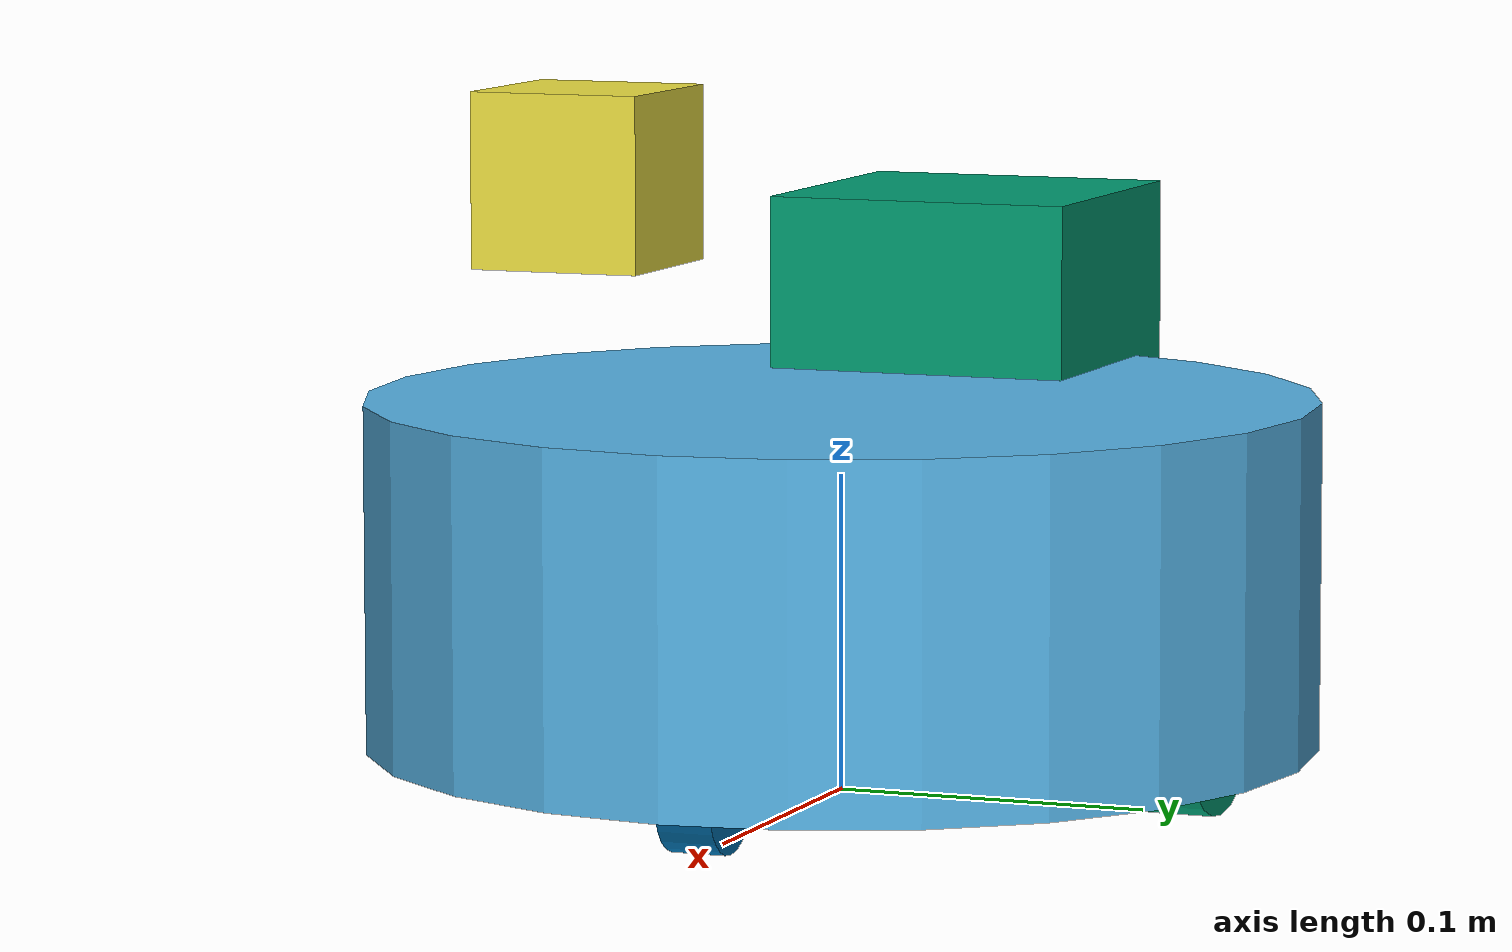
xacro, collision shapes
<?xml version="1.0"?>

<!-- jplaced
 2022, Universidad de Zaragoza -->

<!-- Robot standalone -->

<robot  name="kobuki_standalone"
        xmlns:sensor="http://playerstage.sourceforge.net/gazebo/xmlschema/#sensor"
        xmlns:controller="http://playerstage.sourceforge.net/gazebo/xmlschema/#controller"
        xmlns:interface="http://playerstage.sourceforge.net/gazebo/xmlschema/#interface"
        xmlns:xacro="http://ros.org/wiki/xacro">

  <!-- Defines the kobuki component tag. -->
  <xacro:include filename="$(find robot_description)/launch/include/urdf/kobuki_camera.urdf.xacro" />
  <xacro:kobuki/>
</robot>

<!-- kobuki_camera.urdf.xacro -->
<!-- jplaced
 2022, Universidad de Zaragoza -->

<!-- URDF of robot with camera & laser  -->

<robot name="kobuki" xmlns:xacro="http://ros.org/wiki/xacro">
  <xacro:include filename="$(find robot_description)/launch/include/urdf/common_properties.urdf.xacro"/>
  <xacro:include filename="$(find robot_description)/launch/include/urdf/kobuki_camera_gazebo.urdf.xacro"/>

  <!-- Kobuki -->
  <xacro:macro name="kobuki">
    <link name="base_footprint"/>
    <inertial>
      <mass value="1" />
      <inertia ixx="1.0" ixy="0.0" ixz="0.0" iyy="1.0" iyz="0.0" izz="1.0" />
    </inertial>
    <joint name="base_joint" type="fixed">
      <origin xyz="0 0 0.0102" rpy="0 0 0" />
      <parent link="base_footprint"/>
      <child link="base_link" />
    </joint>
    <link name="base_link">
      <visual>
        <geometry>
          <mesh filename="package://robot_description/launch/include/meshes/main_body.dae" />
        </geometry>
        <origin xyz="0.001 0 0.05199" rpy="0 0 0"/>
      </visual>
      <collision>
        <geometry>
          <cylinder length="0.10938" radius="0.15"/>
        </geometry>
        <origin xyz="0.0 0 0.05949" rpy="0 0 0"/>
      </collision>
      <inertial>
        <origin xyz="0.01 0 0"/>
        <mass value="2.4"/> <!-- 2.4/2.6 kg for small/big battery pack -->
        <inertia ixx="0.019995" ixy="0.0" ixz="0.0"
                 iyy="0.019995" iyz="0.0"
                 izz="0.03675" />
      </inertial>
    </link>

    <joint name="wheel_left_joint" type="continuous">
      <parent link="base_link"/>
      <child link="wheel_left_link"/>
      <origin xyz="0.00 ${0.23/2} 0.0250" rpy="${-M_PI/2} 0 0"/>
      <axis xyz="0 0 1"/>
    </joint>
    <link name="wheel_left_link">
      <visual>
        <geometry>
          <mesh filename="package://robot_description/launch/include/meshes/wheel.dae"/>
        </geometry>
        <origin xyz="0 0 0" rpy="0 0 0"/>
      </visual>
      <collision>
        <geometry>
          <cylinder length="0.0206" radius="0.0352"/>
        </geometry>
        <origin rpy="0 0 0" xyz="0 0 0"/>
      </collision>
      <inertial>
        <mass value="0.01" />
        <origin xyz="0 0 0" />
        <inertia ixx="0.001" ixy="0.0" ixz="0.0"
                 iyy="0.001" iyz="0.0"
                 izz="0.001" />
      </inertial>
    </link>

    <joint name="wheel_right_joint" type="continuous">
      <parent link="base_link"/>
      <child link="wheel_right_link"/>
      <origin xyz="0.00 -${0.23/2} 0.0250" rpy="${-M_PI/2} 0 0"/>
      <axis xyz="0 0 1"/>
    </joint>
    <link name="wheel_right_link">
      <visual>
        <geometry>
          <mesh filename="package://robot_description/launch/include/meshes/wheel.dae"/>
        </geometry>
        <origin xyz="0 0 0" rpy="0 0 0"/>
      </visual>
      <collision>
        <geometry>
          <cylinder length="0.0206" radius="0.0350"/>
        </geometry>
        <origin rpy="0 0 0" xyz="0 0 0"/>
      </collision>
      <inertial>
        <mass value="0.01" />
        <origin xyz="0 0 0" />
        <inertia ixx="0.001" ixy="0.0" ixz="0.0"
                 iyy="0.001" iyz="0.0"
                 izz="0.001" />
      </inertial>
    </link>

    <joint name="caster_front_joint" type="fixed">
      <parent link="base_link"/>
      <child link="caster_front_link"/>
      <origin xyz="0.115 0.0 0.007" rpy="${-M_PI/2} 0 0"/>
    </joint>
    <link name="caster_front_link">
      <collision>
        <geometry>
          <cylinder length="0.0176" radius="0.017"/>
        </geometry>
        <origin rpy="0 0 0" xyz="0 0 0"/>
      </collision>
      <inertial>
        <mass value="0.01" />
        <origin xyz="0 0 0" />
        <inertia ixx="0.001" ixy="0.0" ixz="0.0"
                 iyy="0.001" iyz="0.0"
                 izz="0.001" />
      </inertial>
    </link>

    <joint name="caster_back_joint" type="fixed">
      <parent link="base_link"/>
      <child link="caster_back_link"/>
      <origin xyz="-0.135 0.0 0.009" rpy="${-M_PI/2} 0 0"/>
    </joint>
    <link name="caster_back_link">
      <collision>
        <geometry>
          <cylinder length="0.0176" radius="0.017"/>
        </geometry>
        <origin rpy="0 0 0" xyz="0 0 0"/>
      </collision>
      <inertial>
        <mass value="0.01" />
        <origin xyz="0 0 0" />
        <inertia ixx="0.001" ixy="0.0" ixz="0.0"
                 iyy="0.001" iyz="0.0"
                 izz="0.001" />
      </inertial>
    </link>

    <!-- Kobuki's sensors -->
    <joint name="gyro_joint" type="fixed">
      <axis xyz="0 1 0"/>
      <origin xyz="0.056 0.062 0.0202" rpy="0 0 0"/>
      <parent link="base_link"/>
      <child link="gyro_link"/>
    </joint>
    <link name="gyro_link">
      <inertial>
        <mass value="0.001"/>
        <origin xyz="0 0 0" rpy="0 0 0"/>
        <inertia ixx="0.0001" ixy="0" ixz="0"
                 iyy="0.000001" iyz="0"
                 izz="0.0001"/>
      </inertial>
    </link>

    <joint name="cliff_sensor_left_joint" type="fixed">
      <origin xyz="0.08734 0.13601 0.0214" rpy="0 ${M_PI/2} 0" />
      <parent link="base_link"/>
      <child link="cliff_sensor_left_link" />
    </joint>
    <link name="cliff_sensor_left_link">
      <inertial>
        <mass value="0.0001" />
        <origin xyz="0 0 0" />
        <inertia ixx="0.0001" ixy="0.0" ixz="0.0"
                 iyy="0.0001" iyz="0.0"
                 izz="0.0001" />
      </inertial>
    </link>

    <joint name="cliff_sensor_right_joint" type="fixed">
      <origin xyz="0.085 -0.13601 0.0214" rpy="0 ${M_PI/2} 0" />
      <parent link="base_link"/>
      <child link="cliff_sensor_right_link" />
    </joint>
    <link name="cliff_sensor_right_link">
      <inertial>
        <mass value="0.0001" />
        <origin xyz="0 0 0" />
        <inertia ixx="0.0001" ixy="0.0" ixz="0.0"
                 iyy="0.0001" iyz="0.0"
                 izz="0.0001" />
      </inertial>
    </link>

    <joint name="cliff_sensor_front_joint" type="fixed">
      <origin xyz="0.156 0.00 0.0214" rpy="0 ${M_PI/2} 0" />
      <parent link="base_link"/>
      <child link="cliff_sensor_front_link" />
    </joint>
    <link name="cliff_sensor_front_link">
      <inertial>
        <mass value="0.0001" />
        <origin xyz="0 0 0" />
        <inertia ixx="0.0001" ixy="0.0" ixz="0.0"
                 iyy="0.0001" iyz="0.0"
                 izz="0.0001" />
      </inertial>
    </link>

    <!-- hokuyo -->
    <joint name="laser_joint" type="fixed">
      <origin xyz="-.115 0 0.12" rpy="0 0 0" />
      <parent link="base_link" />
      <child link="base_laser_link" />
    </joint>
    <link name="base_laser_link">
      <collision>
        <origin xyz="0 0 0" rpy="0 0 0"/>
        <geometry>
      <box size="0.1 0.1 0.1"/>
        </geometry>
      </collision>
      <visual>
        <origin xyz="0 0 0" rpy="0 0 0"/>
        <geometry>
          <mesh filename="package://robot_description/launch/include/meshes/hokuyo.dae"/>
        </geometry>
      </visual>
      <inertial>
        <mass value="0.0001" />
        <origin xyz="0 0 1" rpy="0 0 0"/>
        <inertia ixx="0.0001" ixy="0.0" ixz="0.0"
                 iyy="0.0001" iyz="0.0"
                 izz="0.0001" />
     </inertial>
   </link>

   <!-- camera -->
   <joint name="camera_joint" type="fixed">
     <parent link="base_link" />
     <child link="camera_link" />
     <origin xyz="0.2 0 0.2" rpy="0 0 0" />
   </joint>
   <link name="camera_link">
     <collision>
       <origin xyz="0 0 0" rpy="0 0 0"/>
       <geometry>
         <box size="0.05 0.05 0.05"/>
       </geometry>
     </collision>
     <visual>
       <origin xyz="0 0 0" rpy="0 0 1.57"/>
       <geometry>
         <mesh filename="package://robot_description/launch/include/meshes/kinect.dae"/>
       </geometry>
     </visual>
     <inertial>
       <mass value="0.0001" />
       <origin xyz="0 0 1" rpy="0 0 0"/>
       <inertia ixx="0.0001" ixy="0.0" ixz="0.0"
                iyy="0.0001" iyz="0.0"
                izz="0.0001" />
    </inertial>
  </link>
  <joint name="camera_optical_joint" type="fixed">
     <!-- these values have to be these values otherwise the gazebo camera
         image won't be aligned properly with the frame it is supposedly
         originating from -->
     <origin xyz="0 0 0" rpy="${-pi/2} 0 ${-pi/2}"/>
     <parent link="camera_link"/>
     <child link="camera_link_optical"/>
   </joint>

   <link name="camera_link_optical">
   </link>

    <!-- Kobuki Gazebo simulation details -->
    <xacro:kobuki_sim_camera/>

  </xacro:macro>
</robot>

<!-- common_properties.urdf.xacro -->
<!--
  Various useful properties such as constants and materials
 -->
<robot name="xacro_properties" xmlns:xacro="http://ros.org/wiki/xacro">
  <xacro:property name="M_PI" value="3.1415926535897931" />
  <xacro:property name="material_white">
    <material name="white">
      <color rgba="1 1 1 1"/>
    </material>
  </xacro:property>
  <xacro:property name="material_grey">
    <material name="grey">
      <color rgba="0.5 0.5 0.5 1"/>
    </material>
  </xacro:property>
  <xacro:property name="material_light_grey">
    <material name="light_grey">
      <color rgba="0.6 0.6 0.6 1"/>
    </material>
  </xacro:property>
  <xacro:property name="material_dark_grey">
    <material name="dark_grey">
      <color rgba="0.3 0.3 0.3 1"/>
    </material>
  </xacro:property>
  <xacro:property name="material_black">
    <material name="black">
      <color rgba="0.1 0.1 0.1 1"/>
    </material>
  </xacro:property>
  <xacro:property name="material_red">
    <material name="red">
      <color rgba="1 0 0 1"/>
    </material>
  </xacro:property>
  <xacro:property name="material_green">
    <material name="green">
      <color rgba="0.0 0.8 0.0 1"/>
    </material>
  </xacro:property>
  <xacro:property name="material_blue">
    <material name="blue">
      <color rgba="0.0 0.0 1.0 1"/>
    </material>
  </xacro:property>
  <xacro:property name="material_grey_blue">
    <material name="grey_blue">
      <color rgba="0.4 0.4 1.0 1"/>
    </material>
  </xacro:property>
  <xacro:property name="material_orange">
    <material name="orange">
      <color rgba="1.0 0.7 0.0 1"/>
    </material>
  </xacro:property>
  <xacro:property name="camera_link" value="0.05" /> <!-- Size of square 'camera' box -->
</robot>
